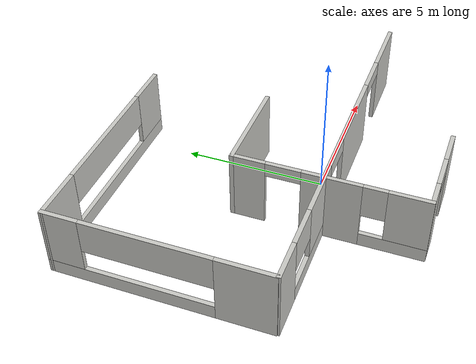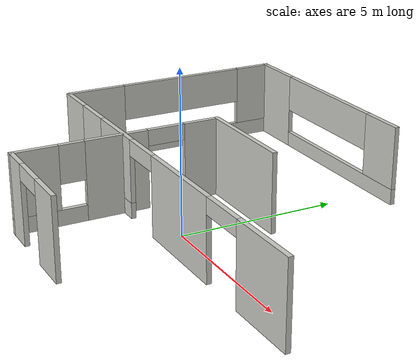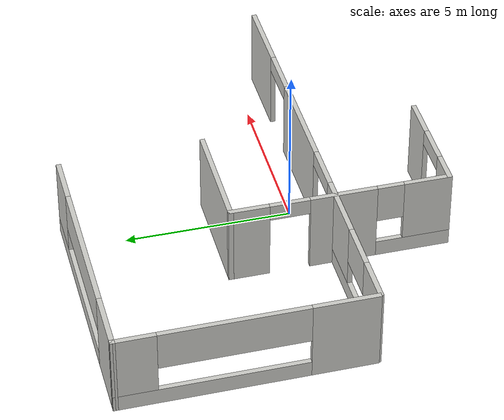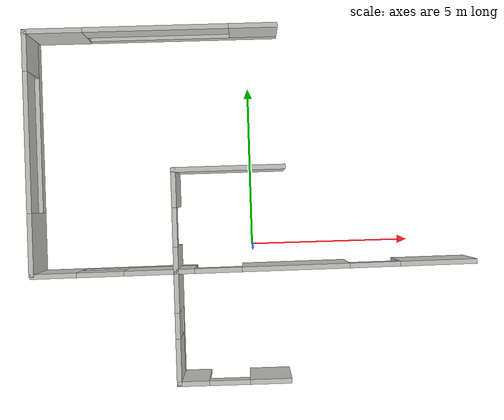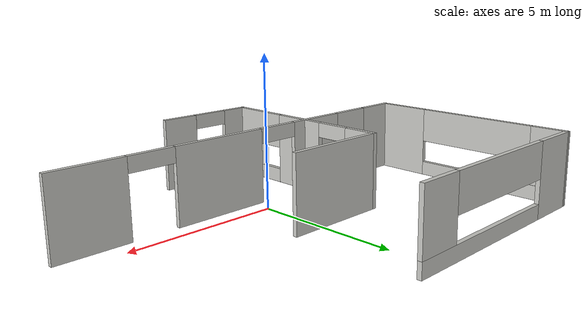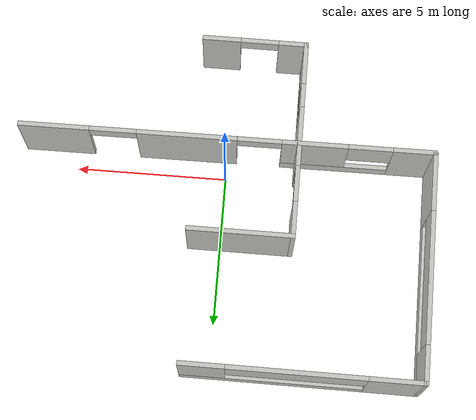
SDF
<sdf version="1.6">
 <model name="single_floor_building">
  <link name="Wall_0">
   <pose>-0.680453 2.40138 0 0 -0 0</pose>
   <visual name="Wall_0_Visual">
    <pose>0 0 1.25 0 -0 0</pose>
    <geometry><box><size>3.5 0.15 2.5</size></box></geometry>
    <material>
     <script><uri>file://media/materials/scripts/gazebo.material</uri><name>Gazebo/CeilingTiled</name></script>
     <ambient>0.921569 0.807843 0.615686 1</ambient>
     <shader type="pixel"/>
     <diffuse>1 1 1 1</diffuse>
     <specular>0 0 0 1</specular>
     <emissive>0 0 0 1</emissive>
    </material>
    <meta><layer>0</layer></meta>
   </visual>
   <collision name="Wall_0_Collision">
    <pose>0 0 1.25 0 -0 0</pose>
    <geometry><box><size>3.5 0.15 2.5</size></box></geometry>
    <surface>
     <friction>
      <ode><mu>1</mu><mu2>1</mu2><fdir1>0 0 0</fdir1><slip1>0</slip1><slip2>0</slip2></ode>
      <torsional>
       <coefficient>1</coefficient>
       <patch_radius>0</patch_radius>
       <surface_radius>0</surface_radius>
       <use_patch_radius>1</use_patch_radius>
       <ode><slip>0</slip></ode>
      </torsional>
     </friction>
     <bounce><restitution_coefficient>0</restitution_coefficient><threshold>1e+06</threshold></bounce>
     <contact>
      <collide_without_contact>0</collide_without_contact>
      <collide_without_contact_bitmask>1</collide_without_contact_bitmask>
      <collide_bitmask>1</collide_bitmask>
      <ode>
       <soft_cfm>0</soft_cfm>
       <soft_erp>0.2</soft_erp>
       <kp>1e+13</kp>
       <kd>1</kd>
       <max_vel>0.01</max_vel>
       <min_depth>0</min_depth>
      </ode>
      <bullet>
       <split_impulse>1</split_impulse>
       <split_impulse_penetration_threshold>-0.01</split_impulse_penetration_threshold>
       <soft_cfm>0</soft_cfm>
       <soft_erp>0.2</soft_erp>
       <kp>1e+13</kp>
       <kd>1</kd>
      </bullet>
     </contact>
    </surface>
   </collision>
  </link>
  <link name="Wall_13">
   <pose>-6.76045 3.04378 0 0 -0 1.5708</pose>
   <visual name="Wall_13_Visual_0">
    <pose>-2.80286 0 1.25 0 -0 0</pose>
    <geometry><box><size>1.94712 0.15 2.5</size></box></geometry>
    <material>
     <script><uri>file://media/materials/scripts/gazebo.material</uri><name>Gazebo/CeilingTiled</name></script>
     <ambient>0.996078 0.47451 0.0196078 1</ambient>
     <shader type="pixel"/>
     <diffuse>1 1 1 1</diffuse>
     <specular>0 0 0 1</specular>
     <emissive>0 0 0 1</emissive>
    </material>
    <meta><layer>0</layer></meta>
   </visual>
   <visual name="Wall_13_Visual_1">
    <pose>0.97356 0 0.25 0 -0 0</pose>
    <geometry><box><size>5.60571 0.15 0.5</size></box></geometry>
    <material>
     <script><uri>file://media/materials/scripts/gazebo.material</uri><name>Gazebo/CeilingTiled</name></script>
     <ambient>0.996078 0.47451 0.0196078 1</ambient>
     <shader type="pixel"/>
     <diffuse>1 1 1 1</diffuse>
     <specular>0 0 0 1</specular>
     <emissive>0 0 0 1</emissive>
    </material>
    <meta><layer>0</layer></meta>
   </visual>
   <visual name="Wall_13_Visual_2">
    <pose>3.1335 0 1.5 0 -0 0</pose>
    <geometry><box><size>1.28584 0.15 2</size></box></geometry>
    <material>
     <script><uri>file://media/materials/scripts/gazebo.material</uri><name>Gazebo/CeilingTiled</name></script>
     <ambient>0.996078 0.47451 0.0196078 1</ambient>
     <shader type="pixel"/>
     <diffuse>1 1 1 1</diffuse>
     <specular>0 0 0 1</specular>
     <emissive>0 0 0 1</emissive>
    </material>
    <meta><layer>0</layer></meta>
   </visual>
   <visual name="Wall_13_Visual_3">
    <pose>0.330641 0 1.9 0 -0 0</pose>
    <geometry><box><size>4.31987 0.15 1.2</size></box></geometry>
    <material>
     <script><uri>file://media/materials/scripts/gazebo.material</uri><name>Gazebo/CeilingTiled</name></script>
     <ambient>0.996078 0.47451 0.0196078 1</ambient>
     <shader type="pixel"/>
     <diffuse>1 1 1 1</diffuse>
     <specular>0 0 0 1</specular>
     <emissive>0 0 0 1</emissive>
    </material>
    <meta><layer>0</layer></meta>
   </visual>
   <collision name="Wall_13_Collision_0">
    <pose>-2.80286 0 1.25 0 -0 0</pose>
    <geometry><box><size>1.94712 0.15 2.5</size></box></geometry>
    <surface>
     <friction>
      <ode><mu>1</mu><mu2>1</mu2><fdir1>0 0 0</fdir1><slip1>0</slip1><slip2>0</slip2></ode>
      <torsional>
       <coefficient>1</coefficient>
       <patch_radius>0</patch_radius>
       <surface_radius>0</surface_radius>
       <use_patch_radius>1</use_patch_radius>
       <ode><slip>0</slip></ode>
      </torsional>
     </friction>
     <bounce><restitution_coefficient>0</restitution_coefficient><threshold>1e+06</threshold></bounce>
     <contact>
      <collide_without_contact>0</collide_without_contact>
      <collide_without_contact_bitmask>1</collide_without_contact_bitmask>
      <collide_bitmask>1</collide_bitmask>
      <ode>
       <soft_cfm>0</soft_cfm>
       <soft_erp>0.2</soft_erp>
       <kp>1e+13</kp>
       <kd>1</kd>
       <max_vel>0.01</max_vel>
       <min_depth>0</min_depth>
      </ode>
      <bullet>
       <split_impulse>1</split_impulse>
       <split_impulse_penetration_threshold>-0.01</split_impulse_penetration_threshold>
       <soft_cfm>0</soft_cfm>
       <soft_erp>0.2</soft_erp>
       <kp>1e+13</kp>
       <kd>1</kd>
      </bullet>
     </contact>
    </surface>
   </collision>
   <collision name="Wall_13_Collision_1">
    <pose>0.97356 0 0.25 0 -0 0</pose>
    <geometry><box><size>5.60571 0.15 0.5</size></box></geometry>
    <surface>
     <friction>
      <ode><mu>1</mu><mu2>1</mu2><fdir1>0 0 0</fdir1><slip1>0</slip1><slip2>0</slip2></ode>
      <torsional>
       <coefficient>1</coefficient>
       <patch_radius>0</patch_radius>
       <surface_radius>0</surface_radius>
       <use_patch_radius>1</use_patch_radius>
       <ode><slip>0</slip></ode>
      </torsional>
     </friction>
     <bounce><restitution_coefficient>0</restitution_coefficient><threshold>1e+06</threshold></bounce>
     <contact>
      <collide_without_contact>0</collide_without_contact>
      <collide_without_contact_bitmask>1</collide_without_contact_bitmask>
      <collide_bitmask>1</collide_bitmask>
      <ode>
       <soft_cfm>0</soft_cfm>
       <soft_erp>0.2</soft_erp>
       <kp>1e+13</kp>
       <kd>1</kd>
       <max_vel>0.01</max_vel>
       <min_depth>0</min_depth>
      </ode>
      <bullet>
       <split_impulse>1</split_impulse>
       <split_impulse_penetration_threshold>-0.01</split_impulse_penetration_threshold>
       <soft_cfm>0</soft_cfm>
       <soft_erp>0.2</soft_erp>
       <kp>1e+13</kp>
       <kd>1</kd>
      </bullet>
     </contact>
    </surface>
   </collision>
   <collision name="Wall_13_Collision_2">
    <pose>3.1335 0 1.5 0 -0 0</pose>
    <geometry><box><size>1.28584 0.15 2</size></box></geometry>
    <surface>
     <friction>
      <ode><mu>1</mu><mu2>1</mu2><fdir1>0 0 0</fdir1><slip1>0</slip1><slip2>0</slip2></ode>
      <torsional>
       <coefficient>1</coefficient>
       <patch_radius>0</patch_radius>
       <surface_radius>0</surface_radius>
       <use_patch_radius>1</use_patch_radius>
       <ode><slip>0</slip></ode>
      </torsional>
     </friction>
     <bounce><restitution_coefficient>0</restitution_coefficient><threshold>1e+06</threshold></bounce>
     <contact>
      <collide_without_contact>0</collide_without_contact>
      <collide_without_contact_bitmask>1</collide_without_contact_bitmask>
      <collide_bitmask>1</collide_bitmask>
      <ode>
       <soft_cfm>0</soft_cfm>
       <soft_erp>0.2</soft_erp>
       <kp>1e+13</kp>
       <kd>1</kd>
       <max_vel>0.01</max_vel>
       <min_depth>0</min_depth>
      </ode>
      <bullet>
       <split_impulse>1</split_impulse>
       <split_impulse_penetration_threshold>-0.01</split_impulse_penetration_threshold>
       <soft_cfm>0</soft_cfm>
       <soft_erp>0.2</soft_erp>
       <kp>1e+13</kp>
       <kd>1</kd>
      </bullet>
     </contact>
    </surface>
   </collision>
   <collision name="Wall_13_Collision_3">
    <pose>0.330641 0 1.9 0 -0 0</pose>
    <geometry><box><size>4.31987 0.15 1.2</size></box></geometry>
    <surface>
     <friction>
      <ode><mu>1</mu><mu2>1</mu2><fdir1>0 0 0</fdir1><slip1>0</slip1><slip2>0</slip2></ode>
      <torsional>
       <coefficient>1</coefficient>
       <patch_radius>0</patch_radius>
       <surface_radius>0</surface_radius>
       <use_patch_radius>1</use_patch_radius>
       <ode><slip>0</slip></ode>
      </torsional>
     </friction>
     <bounce><restitution_coefficient>0</restitution_coefficient><threshold>1e+06</threshold></bounce>
     <contact>
      <collide_without_contact>0</collide_without_contact>
      <collide_without_contact_bitmask>1</collide_without_contact_bitmask>
      <collide_bitmask>1</collide_bitmask>
      <ode>
       <soft_cfm>0</soft_cfm>
       <soft_erp>0.2</soft_erp>
       <kp>1e+13</kp>
       <kd>1</kd>
       <max_vel>0.01</max_vel>
       <min_depth>0</min_depth>
      </ode>
      <bullet>
       <split_impulse>1</split_impulse>
       <split_impulse_penetration_threshold>-0.01</split_impulse_penetration_threshold>
       <soft_cfm>0</soft_cfm>
       <soft_erp>0.2</soft_erp>
       <kp>1e+13</kp>
       <kd>1</kd>
      </bullet>
     </contact>
    </surface>
   </collision>
  </link>
  <link name="Wall_14">
   <pose>-2.93667 6.7299 0 0 0 -0.004</pose>
   <visual name="Wall_14_Visual_0">
    <pose>-2.97598 0 1.25 0 -0 0</pose>
    <geometry><box><size>1.84566 0.15 2.5</size></box></geometry>
    <material>
     <script><uri>file://media/materials/scripts/gazebo.material</uri><name>Gazebo/CeilingTiled</name></script>
     <ambient>0.996078 0.47451 0.0196078 1</ambient>
     <shader type="pixel"/>
     <diffuse>1 1 1 1</diffuse>
     <specular>0 0 0 1</specular>
     <emissive>0 0 0 1</emissive>
    </material>
    <meta><layer>0</layer></meta>
   </visual>
   <visual name="Wall_14_Visual_1">
    <pose>0.922833 0 0.25 0 -0 0</pose>
    <geometry><box><size>5.95195 0.15 0.5</size></box></geometry>
    <material>
     <script><uri>file://media/materials/scripts/gazebo.material</uri><name>Gazebo/CeilingTiled</name></script>
     <ambient>0.996078 0.47451 0.0196078 1</ambient>
     <shader type="pixel"/>
     <diffuse>1 1 1 1</diffuse>
     <specular>0 0 0 1</specular>
     <emissive>0 0 0 1</emissive>
    </material>
    <meta><layer>0</layer></meta>
   </visual>
   <visual name="Wall_14_Visual_2">
    <pose>3.15291 0 1.5 0 -0 0</pose>
    <geometry><box><size>1.49179 0.15 2</size></box></geometry>
    <material>
     <script><uri>file://media/materials/scripts/gazebo.material</uri><name>Gazebo/CeilingTiled</name></script>
     <ambient>0.996078 0.47451 0.0196078 1</ambient>
     <shader type="pixel"/>
     <diffuse>1 1 1 1</diffuse>
     <specular>0 0 0 1</specular>
     <emissive>0 0 0 1</emissive>
    </material>
    <meta><layer>0</layer></meta>
   </visual>
   <visual name="Wall_14_Visual_3">
    <pose>0.176935 0 1.9 0 -0 0</pose>
    <geometry><box><size>4.46016 0.15 1.2</size></box></geometry>
    <material>
     <script><uri>file://media/materials/scripts/gazebo.material</uri><name>Gazebo/CeilingTiled</name></script>
     <ambient>0.996078 0.47451 0.0196078 1</ambient>
     <shader type="pixel"/>
     <diffuse>1 1 1 1</diffuse>
     <specular>0 0 0 1</specular>
     <emissive>0 0 0 1</emissive>
    </material>
    <meta><layer>0</layer></meta>
   </visual>
   <collision name="Wall_14_Collision_0">
    <pose>-2.97598 0 1.25 0 -0 0</pose>
    <geometry><box><size>1.84566 0.15 2.5</size></box></geometry>
    <surface>
     <friction>
      <ode><mu>1</mu><mu2>1</mu2><fdir1>0 0 0</fdir1><slip1>0</slip1><slip2>0</slip2></ode>
      <torsional>
       <coefficient>1</coefficient>
       <patch_radius>0</patch_radius>
       <surface_radius>0</surface_radius>
       <use_patch_radius>1</use_patch_radius>
       <ode><slip>0</slip></ode>
      </torsional>
     </friction>
     <bounce><restitution_coefficient>0</restitution_coefficient><threshold>1e+06</threshold></bounce>
     <contact>
      <collide_without_contact>0</collide_without_contact>
      <collide_without_contact_bitmask>1</collide_without_contact_bitmask>
      <collide_bitmask>1</collide_bitmask>
      <ode>
       <soft_cfm>0</soft_cfm>
       <soft_erp>0.2</soft_erp>
       <kp>1e+13</kp>
       <kd>1</kd>
       <max_vel>0.01</max_vel>
       <min_depth>0</min_depth>
      </ode>
      <bullet>
       <split_impulse>1</split_impulse>
       <split_impulse_penetration_threshold>-0.01</split_impulse_penetration_threshold>
       <soft_cfm>0</soft_cfm>
       <soft_erp>0.2</soft_erp>
       <kp>1e+13</kp>
       <kd>1</kd>
      </bullet>
     </contact>
    </surface>
   </collision>
   <collision name="Wall_14_Collision_1">
    <pose>0.922833 0 0.25 0 -0 0</pose>
    <geometry><box><size>5.95195 0.15 0.5</size></box></geometry>
    <surface>
     <friction>
      <ode><mu>1</mu><mu2>1</mu2><fdir1>0 0 0</fdir1><slip1>0</slip1><slip2>0</slip2></ode>
      <torsional>
       <coefficient>1</coefficient>
       <patch_radius>0</patch_radius>
       <surface_radius>0</surface_radius>
       <use_patch_radius>1</use_patch_radius>
       <ode><slip>0</slip></ode>
      </torsional>
     </friction>
     <bounce><restitution_coefficient>0</restitution_coefficient><threshold>1e+06</threshold></bounce>
     <contact>
      <collide_without_contact>0</collide_without_contact>
      <collide_without_contact_bitmask>1</collide_without_contact_bitmask>
      <collide_bitmask>1</collide_bitmask>
      <ode>
       <soft_cfm>0</soft_cfm>
       <soft_erp>0.2</soft_erp>
       <kp>1e+13</kp>
       <kd>1</kd>
       <max_vel>0.01</max_vel>
       <min_depth>0</min_depth>
      </ode>
      <bullet>
       <split_impulse>1</split_impulse>
       <split_impulse_penetration_threshold>-0.01</split_impulse_penetration_threshold>
       <soft_cfm>0</soft_cfm>
       <soft_erp>0.2</soft_erp>
       <kp>1e+13</kp>
       <kd>1</kd>
      </bullet>
     </contact>
    </surface>
   </collision>
   <collision name="Wall_14_Collision_2">
    <pose>3.15291 0 1.5 0 -0 0</pose>
    <geometry><box><size>1.49179 0.15 2</size></box></geometry>
    <surface>
     <friction>
      <ode><mu>1</mu><mu2>1</mu2><fdir1>0 0 0</fdir1><slip1>0</slip1><slip2>0</slip2></ode>
      <torsional>
       <coefficient>1</coefficient>
       <patch_radius>0</patch_radius>
       <surface_radius>0</surface_radius>
       <use_patch_radius>1</use_patch_radius>
       <ode><slip>0</slip></ode>
      </torsional>
     </friction>
     <bounce><restitution_coefficient>0</restitution_coefficient><threshold>1e+06</threshold></bounce>
     <contact>
      <collide_without_contact>0</collide_without_contact>
      <collide_without_contact_bitmask>1</collide_without_contact_bitmask>
      <collide_bitmask>1</collide_bitmask>
      <ode>
       <soft_cfm>0</soft_cfm>
       <soft_erp>0.2</soft_erp>
       <kp>1e+13</kp>
       <kd>1</kd>
       <max_vel>0.01</max_vel>
       <min_depth>0</min_depth>
      </ode>
      <bullet>
       <split_impulse>1</split_impulse>
       <split_impulse_penetration_threshold>-0.01</split_impulse_penetration_threshold>
       <soft_cfm>0</soft_cfm>
       <soft_erp>0.2</soft_erp>
       <kp>1e+13</kp>
       <kd>1</kd>
      </bullet>
     </contact>
    </surface>
   </collision>
   <collision name="Wall_14_Collision_3">
    <pose>0.176935 0 1.9 0 -0 0</pose>
    <geometry><box><size>4.46016 0.15 1.2</size></box></geometry>
    <surface>
     <friction>
      <ode><mu>1</mu><mu2>1</mu2><fdir1>0 0 0</fdir1><slip1>0</slip1><slip2>0</slip2></ode>
      <torsional>
       <coefficient>1</coefficient>
       <patch_radius>0</patch_radius>
       <surface_radius>0</surface_radius>
       <use_patch_radius>1</use_patch_radius>
       <ode><slip>0</slip></ode>
      </torsional>
     </friction>
     <bounce><restitution_coefficient>0</restitution_coefficient><threshold>1e+06</threshold></bounce>
     <contact>
      <collide_without_contact>0</collide_without_contact>
      <collide_without_contact_bitmask>1</collide_without_contact_bitmask>
      <collide_bitmask>1</collide_bitmask>
      <ode>
       <soft_cfm>0</soft_cfm>
       <soft_erp>0.2</soft_erp>
       <kp>1e+13</kp>
       <kd>1</kd>
       <max_vel>0.01</max_vel>
       <min_depth>0</min_depth>
      </ode>
      <bullet>
       <split_impulse>1</split_impulse>
       <split_impulse_penetration_threshold>-0.01</split_impulse_penetration_threshold>
       <soft_cfm>0</soft_cfm>
       <soft_erp>0.2</soft_erp>
       <kp>1e+13</kp>
       <kd>1</kd>
      </bullet>
     </contact>
    </surface>
   </collision>
  </link>
  <link name="Wall_16">
   <pose>-2.35545 -0.856476 0 0 0 -1.5708</pose>
   <visual name="Wall_16_Visual_0">
    <pose>-2.72153 0 1.25 0 -0 0</pose>
    <geometry><box><size>1.22295 0.15 2.5</size></box></geometry>
    <material>
     <script><uri>file://media/materials/scripts/gazebo.material</uri><name>Gazebo/CeilingTiled</name></script>
     <ambient>0.996078 0.47451 0.0196078 1</ambient>
     <shader type="pixel"/>
     <diffuse>1 1 1 1</diffuse>
     <specular>0 0 0 1</specular>
     <emissive>0 0 0 1</emissive>
    </material>
    <meta><layer>0</layer></meta>
   </visual>
   <visual name="Wall_16_Visual_1">
    <pose>0.091031 0 1.25 0 -0 0</pose>
    <geometry><box><size>2.00077 0.15 2.5</size></box></geometry>
    <material>
     <script><uri>file://media/materials/scripts/gazebo.material</uri><name>Gazebo/CeilingTiled</name></script>
     <ambient>0.996078 0.47451 0.0196078 1</ambient>
     <shader type="pixel"/>
     <diffuse>1 1 1 1</diffuse>
     <specular>0 0 0 1</specular>
     <emissive>0 0 0 1</emissive>
    </material>
    <meta><layer>0</layer></meta>
   </visual>
   <visual name="Wall_16_Visual_2">
    <pose>2.21221 0 0.25 0 -0 0</pose>
    <geometry><box><size>2.24159 0.15 0.5</size></box></geometry>
    <material>
     <script><uri>file://media/materials/scripts/gazebo.material</uri><name>Gazebo/CeilingTiled</name></script>
     <ambient>0.996078 0.47451 0.0196078 1</ambient>
     <shader type="pixel"/>
     <diffuse>1 1 1 1</diffuse>
     <specular>0 0 0 1</specular>
     <emissive>0 0 0 1</emissive>
    </material>
    <meta><layer>0</layer></meta>
   </visual>
   <visual name="Wall_16_Visual_3">
    <pose>2.61221 0 1.5 0 -0 0</pose>
    <geometry><box><size>1.44159 0.15 2</size></box></geometry>
    <material>
     <script><uri>file://media/materials/scripts/gazebo.material</uri><name>Gazebo/CeilingTiled</name></script>
     <ambient>0.996078 0.47451 0.0196078 1</ambient>
     <shader type="pixel"/>
     <diffuse>1 1 1 1</diffuse>
     <specular>0 0 0 1</specular>
     <emissive>0 0 0 1</emissive>
    </material>
    <meta><layer>0</layer></meta>
   </visual>
   <visual name="Wall_16_Visual_4">
    <pose>1.49142 0 1.9 0 -0 0</pose>
    <geometry><box><size>0.8 0.15 1.2</size></box></geometry>
    <material>
     <script><uri>file://media/materials/scripts/gazebo.material</uri><name>Gazebo/CeilingTiled</name></script>
     <ambient>0.996078 0.47451 0.0196078 1</ambient>
     <shader type="pixel"/>
     <diffuse>1 1 1 1</diffuse>
     <specular>0 0 0 1</specular>
     <emissive>0 0 0 1</emissive>
    </material>
    <meta><layer>0</layer></meta>
   </visual>
   <visual name="Wall_16_Visual_5">
    <pose>-1.5097 0 2.25 0 -0 0</pose>
    <geometry><box><size>1.2007 0.15 0.5</size></box></geometry>
    <material>
     <script><uri>file://media/materials/scripts/gazebo.material</uri><name>Gazebo/CeilingTiled</name></script>
     <ambient>0.996078 0.47451 0.0196078 1</ambient>
     <shader type="pixel"/>
     <diffuse>1 1 1 1</diffuse>
     <specular>0 0 0 1</specular>
     <emissive>0 0 0 1</emissive>
    </material>
    <meta><layer>0</layer></meta>
   </visual>
   <collision name="Wall_16_Collision_0">
    <pose>-2.72153 0 1.25 0 -0 0</pose>
    <geometry><box><size>1.22295 0.15 2.5</size></box></geometry>
    <surface>
     <friction>
      <ode><mu>1</mu><mu2>1</mu2><fdir1>0 0 0</fdir1><slip1>0</slip1><slip2>0</slip2></ode>
      <torsional>
       <coefficient>1</coefficient>
       <patch_radius>0</patch_radius>
       <surface_radius>0</surface_radius>
       <use_patch_radius>1</use_patch_radius>
       <ode><slip>0</slip></ode>
      </torsional>
     </friction>
     <bounce><restitution_coefficient>0</restitution_coefficient><threshold>1e+06</threshold></bounce>
     <contact>
      <collide_without_contact>0</collide_without_contact>
      <collide_without_contact_bitmask>1</collide_without_contact_bitmask>
      <collide_bitmask>1</collide_bitmask>
      <ode>
       <soft_cfm>0</soft_cfm>
       <soft_erp>0.2</soft_erp>
       <kp>1e+13</kp>
       <kd>1</kd>
       <max_vel>0.01</max_vel>
       <min_depth>0</min_depth>
      </ode>
      <bullet>
       <split_impulse>1</split_impulse>
       <split_impulse_penetration_threshold>-0.01</split_impulse_penetration_threshold>
       <soft_cfm>0</soft_cfm>
       <soft_erp>0.2</soft_erp>
       <kp>1e+13</kp>
       <kd>1</kd>
      </bullet>
     </contact>
    </surface>
   </collision>
   <collision name="Wall_16_Collision_1">
    <pose>0.091031 0 1.25 0 -0 0</pose>
    <geometry><box><size>2.00077 0.15 2.5</size></box></geometry>
    <surface>
     <friction>
      <ode><mu>1</mu><mu2>1</mu2><fdir1>0 0 0</fdir1><slip1>0</slip1><slip2>0</slip2></ode>
      <torsional>
       <coefficient>1</coefficient>
       <patch_radius>0</patch_radius>
       <surface_radius>0</surface_radius>
       <use_patch_radius>1</use_patch_radius>
       <ode><slip>0</slip></ode>
      </torsional>
     </friction>
     <bounce><restitution_coefficient>0</restitution_coefficient><threshold>1e+06</threshold></bounce>
     <contact>
      <collide_without_contact>0</collide_without_contact>
      <collide_without_contact_bitmask>1</collide_without_contact_bitmask>
      <collide_bitmask>1</collide_bitmask>
      <ode>
       <soft_cfm>0</soft_cfm>
       <soft_erp>0.2</soft_erp>
       <kp>1e+13</kp>
       <kd>1</kd>
       <max_vel>0.01</max_vel>
       <min_depth>0</min_depth>
      </ode>
      <bullet>
       <split_impulse>1</split_impulse>
       <split_impulse_penetration_threshold>-0.01</split_impulse_penetration_threshold>
       <soft_cfm>0</soft_cfm>
       <soft_erp>0.2</soft_erp>
       <kp>1e+13</kp>
       <kd>1</kd>
      </bullet>
     </contact>
    </surface>
   </collision>
   <collision name="Wall_16_Collision_2">
    <pose>2.21221 0 0.25 0 -0 0</pose>
    <geometry><box><size>2.24159 0.15 0.5</size></box></geometry>
    <surface>
     <friction>
      <ode><mu>1</mu><mu2>1</mu2><fdir1>0 0 0</fdir1><slip1>0</slip1><slip2>0</slip2></ode>
      <torsional>
       <coefficient>1</coefficient>
       <patch_radius>0</patch_radius>
       <surface_radius>0</surface_radius>
       <use_patch_radius>1</use_patch_radius>
       <ode><slip>0</slip></ode>
      </torsional>
     </friction>
     <bounce><restitution_coefficient>0</restitution_coefficient><threshold>1e+06</threshold></bounce>
     <contact>
      <collide_without_contact>0</collide_without_contact>
      <collide_without_contact_bitmask>1</collide_without_contact_bitmask>
      <collide_bitmask>1</collide_bitmask>
      <ode>
       <soft_cfm>0</soft_cfm>
       <soft_erp>0.2</soft_erp>
       <kp>1e+13</kp>
       <kd>1</kd>
       <max_vel>0.01</max_vel>
       <min_depth>0</min_depth>
      </ode>
      <bullet>
       <split_impulse>1</split_impulse>
       <split_impulse_penetration_threshold>-0.01</split_impulse_penetration_threshold>
       <soft_cfm>0</soft_cfm>
       <soft_erp>0.2</soft_erp>
       <kp>1e+13</kp>
       <kd>1</kd>
      </bullet>
     </contact>
    </surface>
   </collision>
   <collision name="Wall_16_Collision_3">
    <pose>2.61221 0 1.5 0 -0 0</pose>
    <geometry><box><size>1.44159 0.15 2</size></box></geometry>
    <surface>
     <friction>
      <ode><mu>1</mu><mu2>1</mu2><fdir1>0 0 0</fdir1><slip1>0</slip1><slip2>0</slip2></ode>
      <torsional>
       <coefficient>1</coefficient>
       <patch_radius>0</patch_radius>
       <surface_radius>0</surface_radius>
       <use_patch_radius>1</use_patch_radius>
       <ode><slip>0</slip></ode>
      </torsional>
     </friction>
     <bounce><restitution_coefficient>0</restitution_coefficient><threshold>1e+06</threshold></bounce>
     <contact>
      <collide_without_contact>0</collide_without_contact>
      <collide_without_contact_bitmask>1</collide_without_contact_bitmask>
      <collide_bitmask>1</collide_bitmask>
      <ode>
       <soft_cfm>0</soft_cfm>
       <soft_erp>0.2</soft_erp>
       <kp>1e+13</kp>
       <kd>1</kd>
       <max_vel>0.01</max_vel>
       <min_depth>0</min_depth>
      </ode>
      <bullet>
       <split_impulse>1</split_impulse>
       <split_impulse_penetration_threshold>-0.01</split_impulse_penetration_threshold>
       <soft_cfm>0</soft_cfm>
       <soft_erp>0.2</soft_erp>
       <kp>1e+13</kp>
       <kd>1</kd>
      </bullet>
     </contact>
    </surface>
   </collision>
   <collision name="Wall_16_Collision_4">
    <pose>1.49142 0 1.9 0 -0 0</pose>
    <geometry><box><size>0.8 0.15 1.2</size></box></geometry>
    <surface>
     <friction>
      <ode><mu>1</mu><mu2>1</mu2><fdir1>0 0 0</fdir1><slip1>0</slip1><slip2>0</slip2></ode>
      <torsional>
       <coefficient>1</coefficient>
       <patch_radius>0</patch_radius>
       <surface_radius>0</surface_radius>
       <use_patch_radius>1</use_patch_radius>
       <ode><slip>0</slip></ode>
      </torsional>
     </friction>
     <bounce><restitution_coefficient>0</restitution_coefficient><threshold>1e+06</threshold></bounce>
     <contact>
      <collide_without_contact>0</collide_without_contact>
      <collide_without_contact_bitmask>1</collide_without_contact_bitmask>
      <collide_bitmask>1</collide_bitmask>
      <ode>
       <soft_cfm>0</soft_cfm>
       <soft_erp>0.2</soft_erp>
       <kp>1e+13</kp>
       <kd>1</kd>
       <max_vel>0.01</max_vel>
       <min_depth>0</min_depth>
      </ode>
      <bullet>
       <split_impulse>1</split_impulse>
       <split_impulse_penetration_threshold>-0.01</split_impulse_penetration_threshold>
       <soft_cfm>0</soft_cfm>
       <soft_erp>0.2</soft_erp>
       <kp>1e+13</kp>
       <kd>1</kd>
      </bullet>
     </contact>
    </surface>
   </collision>
   <collision name="Wall_16_Collision_5">
    <pose>-1.5097 0 2.25 0 -0 0</pose>
    <geometry><box><size>1.2007 0.15 0.5</size></box></geometry>
    <surface>
     <friction>
      <ode><mu>1</mu><mu2>1</mu2><fdir1>0 0 0</fdir1><slip1>0</slip1><slip2>0</slip2></ode>
      <torsional>
       <coefficient>1</coefficient>
       <patch_radius>0</patch_radius>
       <surface_radius>0</surface_radius>
       <use_patch_radius>1</use_patch_radius>
       <ode><slip>0</slip></ode>
      </torsional>
     </friction>
     <bounce><restitution_coefficient>0</restitution_coefficient><threshold>1e+06</threshold></bounce>
     <contact>
      <collide_without_contact>0</collide_without_contact>
      <collide_without_contact_bitmask>1</collide_without_contact_bitmask>
      <collide_bitmask>1</collide_bitmask>
      <ode>
       <soft_cfm>0</soft_cfm>
       <soft_erp>0.2</soft_erp>
       <kp>1e+13</kp>
       <kd>1</kd>
       <max_vel>0.01</max_vel>
       <min_depth>0</min_depth>
      </ode>
      <bullet>
       <split_impulse>1</split_impulse>
       <split_impulse_penetration_threshold>-0.01</split_impulse_penetration_threshold>
       <soft_cfm>0</soft_cfm>
       <soft_erp>0.2</soft_erp>
       <kp>1e+13</kp>
       <kd>1</kd>
      </bullet>
     </contact>
    </surface>
   </collision>
  </link>
  <link name="Wall_19">
   <pose>-0.680453 -4.11433 0 0 -0 0</pose>
   <visual name="Wall_19_Visual_0">
    <pose>-1.25768 0 1.25 0 -0 0</pose>
    <geometry><box><size>0.984642 0.15 2.5</size></box></geometry>
    <material>
     <script><uri>file://media/materials/scripts/gazebo.material</uri><name>Gazebo/CeilingTiled</name></script>
     <ambient>0.921569 0.807843 0.615686 1</ambient>
     <shader type="pixel"/>
     <diffuse>1 1 1 1</diffuse>
     <specular>0 0 0 1</specular>
     <emissive>0 0 0 1</emissive>
    </material>
    <meta><layer>0</layer></meta>
   </visual>
   <visual name="Wall_19_Visual_1">
    <pose>1.1158 0 1.25 0 -0 0</pose>
    <geometry><box><size>1.2684 0.15 2.5</size></box></geometry>
    <material>
     <script><uri>file://media/materials/scripts/gazebo.material</uri><name>Gazebo/CeilingTiled</name></script>
     <ambient>0.921569 0.807843 0.615686 1</ambient>
     <shader type="pixel"/>
     <diffuse>1 1 1 1</diffuse>
     <specular>0 0 0 1</specular>
     <emissive>0 0 0 1</emissive>
    </material>
    <meta><layer>0</layer></meta>
   </visual>
   <visual name="Wall_19_Visual_2">
    <pose>-0.141879 0 2.25 0 -0 0</pose>
    <geometry><box><size>1.24696 0.15 0.5</size></box></geometry>
    <material>
     <script><uri>file://media/materials/scripts/gazebo.material</uri><name>Gazebo/CeilingTiled</name></script>
     <ambient>0.921569 0.807843 0.615686 1</ambient>
     <shader type="pixel"/>
     <diffuse>1 1 1 1</diffuse>
     <specular>0 0 0 1</specular>
     <emissive>0 0 0 1</emissive>
    </material>
    <meta><layer>0</layer></meta>
   </visual>
   <collision name="Wall_19_Collision_0">
    <pose>-1.25768 0 1.25 0 -0 0</pose>
    <geometry><box><size>0.984642 0.15 2.5</size></box></geometry>
    <surface>
     <friction>
      <ode><mu>1</mu><mu2>1</mu2><fdir1>0 0 0</fdir1><slip1>0</slip1><slip2>0</slip2></ode>
      <torsional>
       <coefficient>1</coefficient>
       <patch_radius>0</patch_radius>
       <surface_radius>0</surface_radius>
       <use_patch_radius>1</use_patch_radius>
       <ode><slip>0</slip></ode>
      </torsional>
     </friction>
     <bounce><restitution_coefficient>0</restitution_coefficient><threshold>1e+06</threshold></bounce>
     <contact>
      <collide_without_contact>0</collide_without_contact>
      <collide_without_contact_bitmask>1</collide_without_contact_bitmask>
      <collide_bitmask>1</collide_bitmask>
      <ode>
       <soft_cfm>0</soft_cfm>
       <soft_erp>0.2</soft_erp>
       <kp>1e+13</kp>
       <kd>1</kd>
       <max_vel>0.01</max_vel>
       <min_depth>0</min_depth>
      </ode>
      <bullet>
       <split_impulse>1</split_impulse>
       <split_impulse_penetration_threshold>-0.01</split_impulse_penetration_threshold>
       <soft_cfm>0</soft_cfm>
       <soft_erp>0.2</soft_erp>
       <kp>1e+13</kp>
       <kd>1</kd>
      </bullet>
     </contact>
    </surface>
   </collision>
   <collision name="Wall_19_Collision_1">
    <pose>1.1158 0 1.25 0 -0 0</pose>
    <geometry><box><size>1.2684 0.15 2.5</size></box></geometry>
    <surface>
     <friction>
      <ode><mu>1</mu><mu2>1</mu2><fdir1>0 0 0</fdir1><slip1>0</slip1><slip2>0</slip2></ode>
      <torsional>
       <coefficient>1</coefficient>
       <patch_radius>0</patch_radius>
       <surface_radius>0</surface_radius>
       <use_patch_radius>1</use_patch_radius>
       <ode><slip>0</slip></ode>
      </torsional>
     </friction>
     <bounce><restitution_coefficient>0</restitution_coefficient><threshold>1e+06</threshold></bounce>
     <contact>
      <collide_without_contact>0</collide_without_contact>
      <collide_without_contact_bitmask>1</collide_without_contact_bitmask>
      <collide_bitmask>1</collide_bitmask>
      <ode>
       <soft_cfm>0</soft_cfm>
       <soft_erp>0.2</soft_erp>
       <kp>1e+13</kp>
       <kd>1</kd>
       <max_vel>0.01</max_vel>
       <min_depth>0</min_depth>
      </ode>
      <bullet>
       <split_impulse>1</split_impulse>
       <split_impulse_penetration_threshold>-0.01</split_impulse_penetration_threshold>
       <soft_cfm>0</soft_cfm>
       <soft_erp>0.2</soft_erp>
       <kp>1e+13</kp>
       <kd>1</kd>
      </bullet>
     </contact>
    </surface>
   </collision>
   <collision name="Wall_19_Collision_2">
    <pose>-0.141879 0 2.25 0 -0 0</pose>
    <geometry><box><size>1.24696 0.15 0.5</size></box></geometry>
    <surface>
     <friction>
      <ode><mu>1</mu><mu2>1</mu2><fdir1>0 0 0</fdir1><slip1>0</slip1><slip2>0</slip2></ode>
      <torsional>
       <coefficient>1</coefficient>
       <patch_radius>0</patch_radius>
       <surface_radius>0</surface_radius>
       <use_patch_radius>1</use_patch_radius>
       <ode><slip>0</slip></ode>
      </torsional>
     </friction>
     <bounce><restitution_coefficient>0</restitution_coefficient><threshold>1e+06</threshold></bounce>
     <contact>
      <collide_without_contact>0</collide_without_contact>
      <collide_without_contact_bitmask>1</collide_without_contact_bitmask>
      <collide_bitmask>1</collide_bitmask>
      <ode>
       <soft_cfm>0</soft_cfm>
       <soft_erp>0.2</soft_erp>
       <kp>1e+13</kp>
       <kd>1</kd>
       <max_vel>0.01</max_vel>
       <min_depth>0</min_depth>
      </ode>
      <bullet>
       <split_impulse>1</split_impulse>
       <split_impulse_penetration_threshold>-0.01</split_impulse_penetration_threshold>
       <soft_cfm>0</soft_cfm>
       <soft_erp>0.2</soft_erp>
       <kp>1e+13</kp>
       <kd>1</kd>
      </bullet>
     </contact>
    </surface>
   </collision>
  </link>
  <link name="Wall_6">
   <pose>-5e-06 -0.68823 0 0 -0 0.004545</pose>
   <visual name="Wall_6_Visual_0">
    <pose>-6.09809 0 1.25 0 -0 0</pose>
    <geometry><box><size>1.41365 0.15 2.5</size></box></geometry>
    <material>
     <script><uri>file://media/materials/scripts/gazebo.material</uri><name>Gazebo/CeilingTiled</name></script>
     <ambient>0.921569 0.807843 0.615686 1</ambient>
     <shader type="pixel"/>
     <diffuse>1 1 1 1</diffuse>
     <specular>0 0 0 1</specular>
     <emissive>0 0 0 1</emissive>
    </material>
    <meta><layer>0</layer></meta>
   </visual>
   <visual name="Wall_6_Visual_1">
    <pose>1.30078 0 1.25 0 -0 0</pose>
    <geometry><box><size>3.27649 0.15 2.5</size></box></geometry>
    <material>
     <script><uri>file://media/materials/scripts/gazebo.material</uri><name>Gazebo/CeilingTiled</name></script>
     <ambient>0.921569 0.807843 0.615686 1</ambient>
     <shader type="pixel"/>
     <diffuse>1 1 1 1</diffuse>
     <specular>0 0 0 1</specular>
     <emissive>0 0 0 1</emissive>
    </material>
    <meta><layer>0</layer></meta>
   </visual>
   <visual name="Wall_6_Visual_2">
    <pose>5.64099 0 1.25 0 -0 0</pose>
    <geometry><box><size>2.32786 0.15 2.5</size></box></geometry>
    <material>
     <script><uri>file://media/materials/scripts/gazebo.material</uri><name>Gazebo/CeilingTiled</name></script>
     <ambient>0.921569 0.807843 0.615686 1</ambient>
     <shader type="pixel"/>
     <diffuse>1 1 1 1</diffuse>
     <specular>0 0 0 1</specular>
     <emissive>0 0 0 1</emissive>
    </material>
    <meta><layer>0</layer></meta>
   </visual>
   <visual name="Wall_6_Visual_3">
    <pose>-3.59193 0 0.25 0 -0 0</pose>
    <geometry><box><size>3.59867 0.15 0.5</size></box></geometry>
    <material>
     <script><uri>file://media/materials/scripts/gazebo.material</uri><name>Gazebo/CeilingTiled</name></script>
     <ambient>0.921569 0.807843 0.615686 1</ambient>
     <shader type="pixel"/>
     <diffuse>1 1 1 1</diffuse>
     <specular>0 0 0 1</specular>
     <emissive>0 0 0 1</emissive>
    </material>
    <meta><layer>0</layer></meta>
   </visual>
   <visual name="Wall_6_Visual_4">
    <pose>-2.86816 0 1.5 0 -0 0</pose>
    <geometry><box><size>2.15113 0.15 2</size></box></geometry>
    <material>
     <script><uri>file://media/materials/scripts/gazebo.material</uri><name>Gazebo/CeilingTiled</name></script>
     <ambient>0.921569 0.807843 0.615686 1</ambient>
     <shader type="pixel"/>
     <diffuse>1 1 1 1</diffuse>
     <specular>0 0 0 1</specular>
     <emissive>0 0 0 1</emissive>
    </material>
    <meta><layer>0</layer></meta>
   </visual>
   <visual name="Wall_6_Visual_5">
    <pose>-4.6675 0 1.9 0 -0 0</pose>
    <geometry><box><size>1.44755 0.15 1.2</size></box></geometry>
    <material>
     <script><uri>file://media/materials/scripts/gazebo.material</uri><name>Gazebo/CeilingTiled</name></script>
     <ambient>0.921569 0.807843 0.615686 1</ambient>
     <shader type="pixel"/>
     <diffuse>1 1 1 1</diffuse>
     <specular>0 0 0 1</specular>
     <emissive>0 0 0 1</emissive>
    </material>
    <meta><layer>0</layer></meta>
   </visual>
   <visual name="Wall_6_Visual_6">
    <pose>3.70804 0 2.25 0 -0 0</pose>
    <geometry><box><size>1.53804 0.15 0.5</size></box></geometry>
    <material>
     <script><uri>file://media/materials/scripts/gazebo.material</uri><name>Gazebo/CeilingTiled</name></script>
     <ambient>0.921569 0.807843 0.615686 1</ambient>
     <shader type="pixel"/>
     <diffuse>1 1 1 1</diffuse>
     <specular>0 0 0 1</specular>
     <emissive>0 0 0 1</emissive>
    </material>
    <meta><layer>0</layer></meta>
   </visual>
   <visual name="Wall_6_Visual_7">
    <pose>-1.06503 0 2.25 0 -0 0</pose>
    <geometry><box><size>1.45513 0.15 0.5</size></box></geometry>
    <material>
     <script><uri>file://media/materials/scripts/gazebo.material</uri><name>Gazebo/CeilingTiled</name></script>
     <ambient>0.921569 0.807843 0.615686 1</ambient>
     <shader type="pixel"/>
     <diffuse>1 1 1 1</diffuse>
     <specular>0 0 0 1</specular>
     <emissive>0 0 0 1</emissive>
    </material>
    <meta><layer>0</layer></meta>
   </visual>
   <collision name="Wall_6_Collision_1">
    <pose>1.30078 0 1.25 0 -0 0</pose>
    <geometry><box><size>3.27649 0.15 2.5</size></box></geometry>
    <surface>
     <friction>
      <ode><mu>1</mu><mu2>1</mu2><fdir1>0 0 0</fdir1><slip1>0</slip1><slip2>0</slip2></ode>
      <torsional>
       <coefficient>1</coefficient>
       <patch_radius>0</patch_radius>
       <surface_radius>0</surface_radius>
       <use_patch_radius>1</use_patch_radius>
       <ode><slip>0</slip></ode>
      </torsional>
     </friction>
     <bounce><restitution_coefficient>0</restitution_coefficient><threshold>1e+06</threshold></bounce>
     <contact>
      <collide_without_contact>0</collide_without_contact>
      <collide_without_contact_bitmask>1</collide_without_contact_bitmask>
      <collide_bitmask>1</collide_bitmask>
      <ode>
       <soft_cfm>0</soft_cfm>
       <soft_erp>0.2</soft_erp>
       <kp>1e+13</kp>
       <kd>1</kd>
       <max_vel>0.01</max_vel>
       <min_depth>0</min_depth>
      </ode>
      <bullet>
       <split_impulse>1</split_impulse>
       <split_impulse_penetration_threshold>-0.01</split_impulse_penetration_threshold>
       <soft_cfm>0</soft_cfm>
       <soft_erp>0.2</soft_erp>
       <kp>1e+13</kp>
       <kd>1</kd>
      </bullet>
     </contact>
    </surface>
   </collision>
   <collision name="Wall_6_Collision_0">
    <pose>-6.09809 0 1.25 0 -0 0</pose>
    <geometry><box><size>1.41365 0.15 2.5</size></box></geometry>
    <surface>
     <friction>
      <ode><mu>1</mu><mu2>1</mu2><fdir1>0 0 0</fdir1><slip1>0</slip1><slip2>0</slip2></ode>
      <torsional>
       <coefficient>1</coefficient>
       <patch_radius>0</patch_radius>
       <surface_radius>0</surface_radius>
       <use_patch_radius>1</use_patch_radius>
       <ode><slip>0</slip></ode>
      </torsional>
     </friction>
     <bounce><restitution_coefficient>0</restitution_coefficient><threshold>1e+06</threshold></bounce>
     <contact>
      <collide_without_contact>0</collide_without_contact>
      <collide_without_contact_bitmask>1</collide_without_contact_bitmask>
      <collide_bitmask>1</collide_bitmask>
      <ode>
       <soft_cfm>0</soft_cfm>
       <soft_erp>0.2</soft_erp>
       <kp>1e+13</kp>
       <kd>1</kd>
       <max_vel>0.01</max_vel>
       <min_depth>0</min_depth>
      </ode>
      <bullet>
       <split_impulse>1</split_impulse>
       <split_impulse_penetration_threshold>-0.01</split_impulse_penetration_threshold>
       <soft_cfm>0</soft_cfm>
       <soft_erp>0.2</soft_erp>
       <kp>1e+13</kp>
       <kd>1</kd>
      </bullet>
     </contact>
    </surface>
   </collision>
   <collision name="Wall_6_Collision_5">
    <pose>-4.6675 0 1.9 0 -0 0</pose>
    <geometry><box><size>1.44755 0.15 1.2</size></box></geometry>
    <surface>
     <friction>
      <ode><mu>1</mu><mu2>1</mu2><fdir1>0 0 0</fdir1><slip1>0</slip1><slip2>0</slip2></ode>
      <torsional>
       <coefficient>1</coefficient>
       <patch_radius>0</patch_radius>
       <surface_radius>0</surface_radius>
       <use_patch_radius>1</use_patch_radius>
       <ode><slip>0</slip></ode>
      </torsional>
     </friction>
     <bounce><restitution_coefficient>0</restitution_coefficient><threshold>1e+06</threshold></bounce>
     <contact>
      <collide_without_contact>0</collide_without_contact>
      <collide_without_contact_bitmask>1</collide_without_contact_bitmask>
      <collide_bitmask>1</collide_bitmask>
      <ode>
       <soft_cfm>0</soft_cfm>
       <soft_erp>0.2</soft_erp>
       <kp>1e+13</kp>
       <kd>1</kd>
       <max_vel>0.01</max_vel>
       <min_depth>0</min_depth>
      </ode>
      <bullet>
       <split_impulse>1</split_impulse>
       <split_impulse_penetration_threshold>-0.01</split_impulse_penetration_threshold>
       <soft_cfm>0</soft_cfm>
       <soft_erp>0.2</soft_erp>
       <kp>1e+13</kp>
       <kd>1</kd>
      </bullet>
     </contact>
    </surface>
   </collision>
   <collision name="Wall_6_Collision_2">
    <pose>5.64099 0 1.25 0 -0 0</pose>
    <geometry><box><size>2.32786 0.15 2.5</size></box></geometry>
    <surface>
     <friction>
      <ode><mu>1</mu><mu2>1</mu2><fdir1>0 0 0</fdir1><slip1>0</slip1><slip2>0</slip2></ode>
      <torsional>
       <coefficient>1</coefficient>
       <patch_radius>0</patch_radius>
       <surface_radius>0</surface_radius>
       <use_patch_radius>1</use_patch_radius>
       <ode><slip>0</slip></ode>
      </torsional>
     </friction>
     <bounce><restitution_coefficient>0</restitution_coefficient><threshold>1e+06</threshold></bounce>
     <contact>
      <collide_without_contact>0</collide_without_contact>
      <collide_without_contact_bitmask>1</collide_without_contact_bitmask>
      <collide_bitmask>1</collide_bitmask>
      <ode>
       <soft_cfm>0</soft_cfm>
       <soft_erp>0.2</soft_erp>
       <kp>1e+13</kp>
       <kd>1</kd>
       <max_vel>0.01</max_vel>
       <min_depth>0</min_depth>
      </ode>
      <bullet>
       <split_impulse>1</split_impulse>
       <split_impulse_penetration_threshold>-0.01</split_impulse_penetration_threshold>
       <soft_cfm>0</soft_cfm>
       <soft_erp>0.2</soft_erp>
       <kp>1e+13</kp>
       <kd>1</kd>
      </bullet>
     </contact>
    </surface>
   </collision>
   <collision name="Wall_6_Collision_3">
    <pose>-3.59193 0 0.25 0 -0 0</pose>
    <geometry><box><size>3.59867 0.15 0.5</size></box></geometry>
    <surface>
     <friction>
      <ode><mu>1</mu><mu2>1</mu2><fdir1>0 0 0</fdir1><slip1>0</slip1><slip2>0</slip2></ode>
      <torsional>
       <coefficient>1</coefficient>
       <patch_radius>0</patch_radius>
       <surface_radius>0</surface_radius>
       <use_patch_radius>1</use_patch_radius>
       <ode><slip>0</slip></ode>
      </torsional>
     </friction>
     <bounce><restitution_coefficient>0</restitution_coefficient><threshold>1e+06</threshold></bounce>
     <contact>
      <collide_without_contact>0</collide_without_contact>
      <collide_without_contact_bitmask>1</collide_without_contact_bitmask>
      <collide_bitmask>1</collide_bitmask>
      <ode>
       <soft_cfm>0</soft_cfm>
       <soft_erp>0.2</soft_erp>
       <kp>1e+13</kp>
       <kd>1</kd>
       <max_vel>0.01</max_vel>
       <min_depth>0</min_depth>
      </ode>
      <bullet>
       <split_impulse>1</split_impulse>
       <split_impulse_penetration_threshold>-0.01</split_impulse_penetration_threshold>
       <soft_cfm>0</soft_cfm>
       <soft_erp>0.2</soft_erp>
       <kp>1e+13</kp>
       <kd>1</kd>
      </bullet>
     </contact>
    </surface>
   </collision>
   <collision name="Wall_6_Collision_4">
    <pose>-2.86816 0 1.5 0 -0 0</pose>
    <geometry><box><size>2.15113 0.15 2</size></box></geometry>
    <surface>
     <friction>
      <ode><mu>1</mu><mu2>1</mu2><fdir1>0 0 0</fdir1><slip1>0</slip1><slip2>0</slip2></ode>
      <torsional>
       <coefficient>1</coefficient>
       <patch_radius>0</patch_radius>
       <surface_radius>0</surface_radius>
       <use_patch_radius>1</use_patch_radius>
       <ode><slip>0</slip></ode>
      </torsional>
     </friction>
     <bounce><restitution_coefficient>0</restitution_coefficient><threshold>1e+06</threshold></bounce>
     <contact>
      <collide_without_contact>0</collide_without_contact>
      <collide_without_contact_bitmask>1</collide_without_contact_bitmask>
      <collide_bitmask>1</collide_bitmask>
      <ode>
       <soft_cfm>0</soft_cfm>
       <soft_erp>0.2</soft_erp>
       <kp>1e+13</kp>
       <kd>1</kd>
       <max_vel>0.01</max_vel>
       <min_depth>0</min_depth>
      </ode>
      <bullet>
       <split_impulse>1</split_impulse>
       <split_impulse_penetration_threshold>-0.01</split_impulse_penetration_threshold>
       <soft_cfm>0</soft_cfm>
       <soft_erp>0.2</soft_erp>
       <kp>1e+13</kp>
       <kd>1</kd>
      </bullet>
     </contact>
    </surface>
   </collision>
   <collision name="Wall_6_Collision_7">
    <pose>-1.06503 0 2.25 0 -0 0</pose>
    <geometry><box><size>1.45513 0.15 0.5</size></box></geometry>
    <surface>
     <friction>
      <ode><mu>1</mu><mu2>1</mu2><fdir1>0 0 0</fdir1><slip1>0</slip1><slip2>0</slip2></ode>
      <torsional>
       <coefficient>1</coefficient>
       <patch_radius>0</patch_radius>
       <surface_radius>0</surface_radius>
       <use_patch_radius>1</use_patch_radius>
       <ode><slip>0</slip></ode>
      </torsional>
     </friction>
     <bounce><restitution_coefficient>0</restitution_coefficient><threshold>1e+06</threshold></bounce>
     <contact>
      <collide_without_contact>0</collide_without_contact>
      <collide_without_contact_bitmask>1</collide_without_contact_bitmask>
      <collide_bitmask>1</collide_bitmask>
      <ode>
       <soft_cfm>0</soft_cfm>
       <soft_erp>0.2</soft_erp>
       <kp>1e+13</kp>
       <kd>1</kd>
       <max_vel>0.01</max_vel>
       <min_depth>0</min_depth>
      </ode>
      <bullet>
       <split_impulse>1</split_impulse>
       <split_impulse_penetration_threshold>-0.01</split_impulse_penetration_threshold>
       <soft_cfm>0</soft_cfm>
       <soft_erp>0.2</soft_erp>
       <kp>1e+13</kp>
       <kd>1</kd>
      </bullet>
     </contact>
    </surface>
   </collision>
   <collision name="Wall_6_Collision_6">
    <pose>3.70804 0 2.25 0 -0 0</pose>
    <geometry><box><size>1.53804 0.15 0.5</size></box></geometry>
    <surface>
     <friction>
      <ode><mu>1</mu><mu2>1</mu2><fdir1>0 0 0</fdir1><slip1>0</slip1><slip2>0</slip2></ode>
      <torsional>
       <coefficient>1</coefficient>
       <patch_radius>0</patch_radius>
       <surface_radius>0</surface_radius>
       <use_patch_radius>1</use_patch_radius>
       <ode><slip>0</slip></ode>
      </torsional>
     </friction>
     <bounce><restitution_coefficient>0</restitution_coefficient><threshold>1e+06</threshold></bounce>
     <contact>
      <collide_without_contact>0</collide_without_contact>
      <collide_without_contact_bitmask>1</collide_without_contact_bitmask>
      <collide_bitmask>1</collide_bitmask>
      <ode>
       <soft_cfm>0</soft_cfm>
       <soft_erp>0.2</soft_erp>
       <kp>1e+13</kp>
       <kd>1</kd>
       <max_vel>0.01</max_vel>
       <min_depth>0</min_depth>
      </ode>
      <bullet>
       <split_impulse>1</split_impulse>
       <split_impulse_penetration_threshold>-0.01</split_impulse_penetration_threshold>
       <soft_cfm>0</soft_cfm>
       <soft_erp>0.2</soft_erp>
       <kp>1e+13</kp>
       <kd>1</kd>
      </bullet>
     </contact>
    </surface>
   </collision>
  </link>
  <static>1</static>
 </model>
</sdf>
